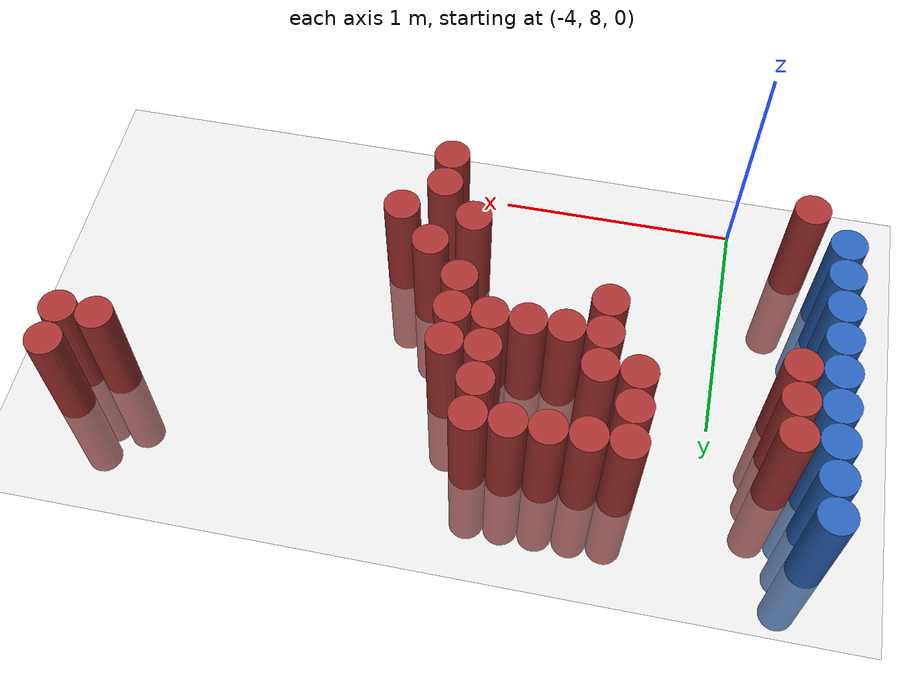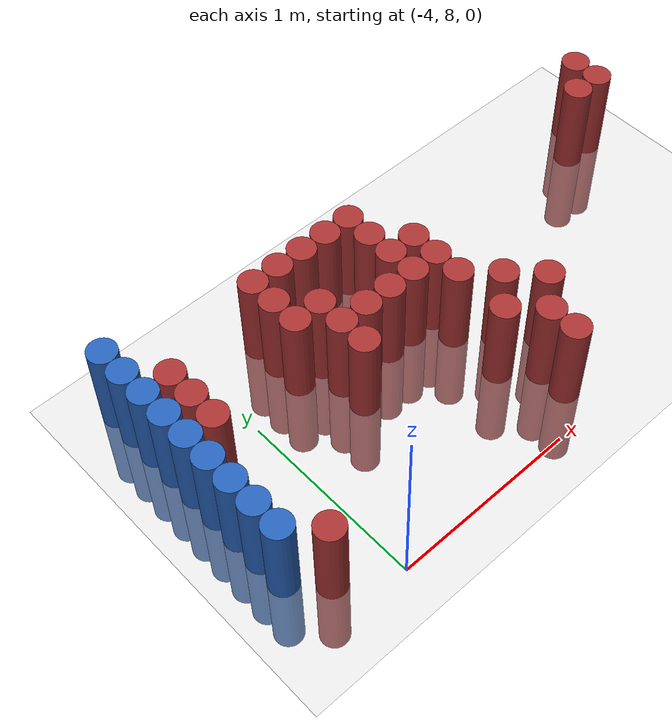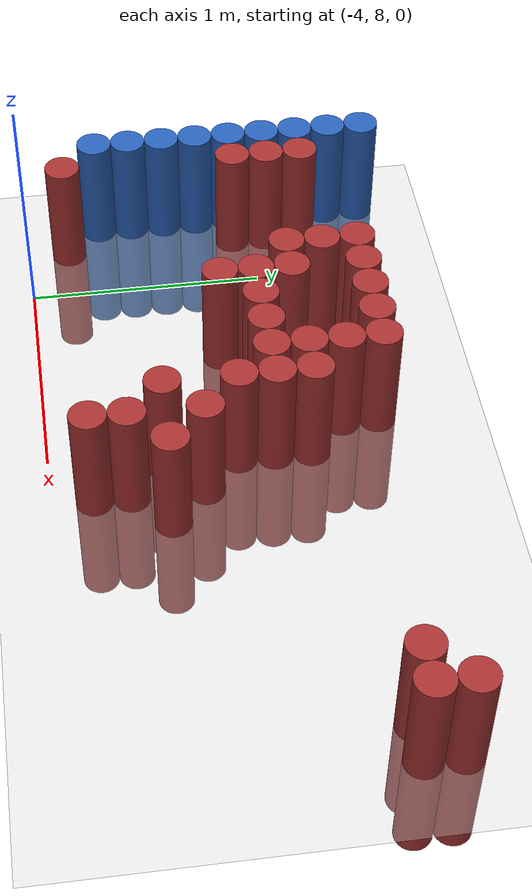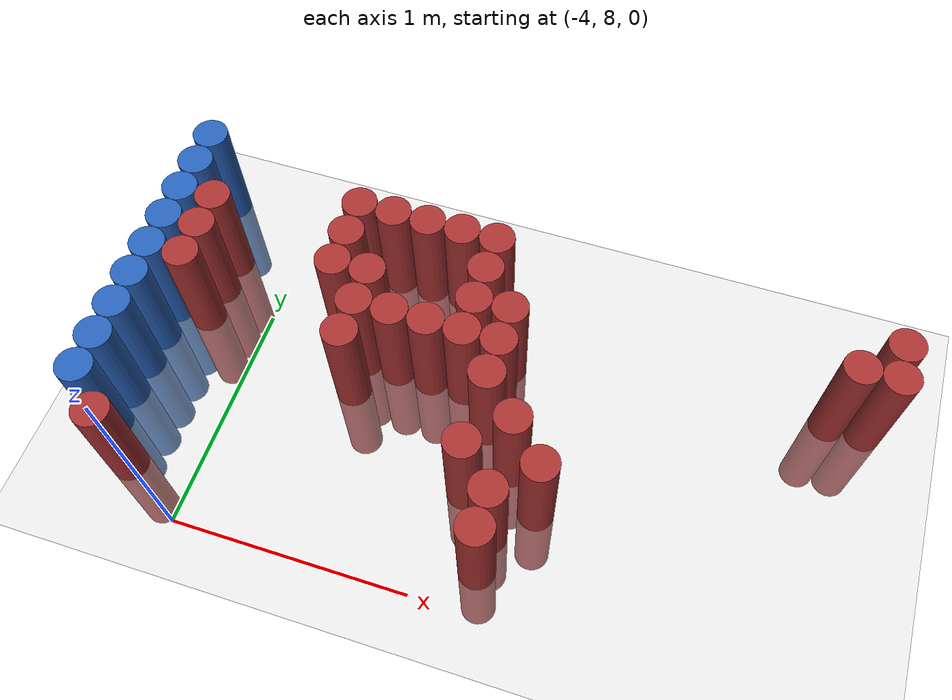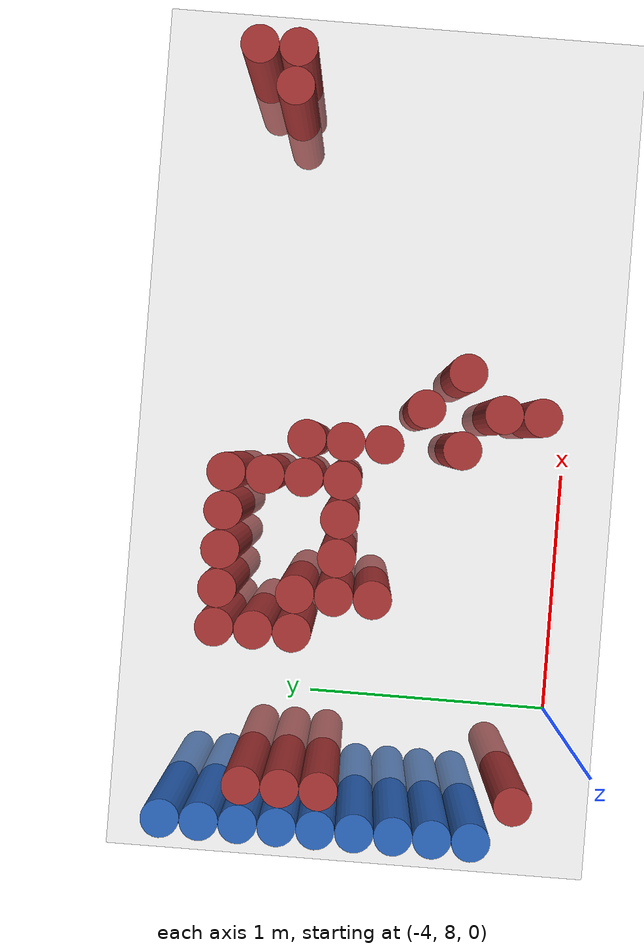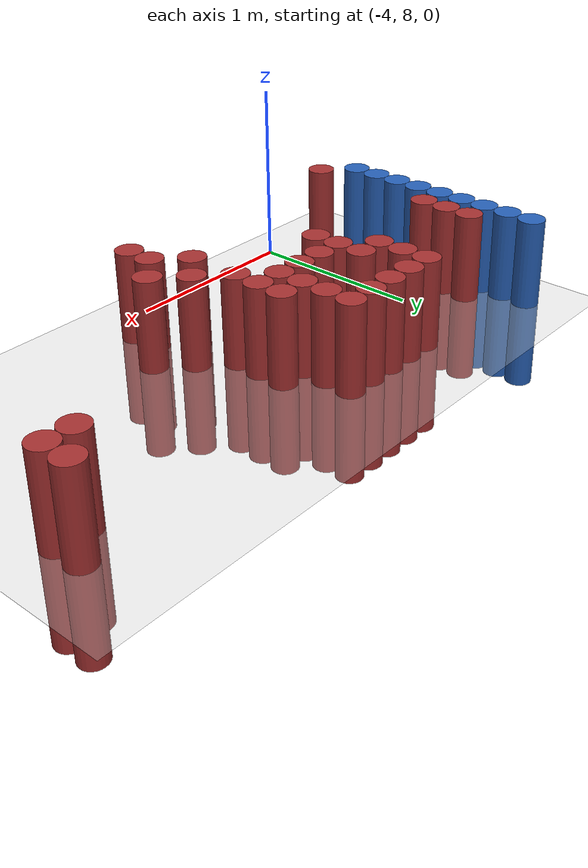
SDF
<sdf version="1.6">
 <world name="default">
  <model name="ground_plane">
   <static>1</static>
   <link name="link">
    <collision name="collision">
     <geometry><plane><normal>0 0 1</normal><size>100 100</size></plane></geometry>
     <surface><friction><ode><mu>100</mu><mu2>50</mu2></ode></friction></surface>
    </collision>
    <visual name="visual">
     <cast_shadows>0</cast_shadows>
     <geometry><plane><normal>0 0 1</normal><size>100 100</size></plane></geometry>
     <material>
      <script><uri>file://media/materials/scripts/gazebo.material</uri><name>Gazebo/Grey</name></script>
     </material>
    </visual>
   </link>
  </model>
  <model name="unit_cylinder_117">
   <static>1</static>
   <pose>-4.425000 8.325000 0.000000 0.000000 0.000000 0.000000</pose>
   <link name="link">
    <inertial>
     <mass>1</mass>
     <inertia><ixx>0.145833</ixx><ixy>0</ixy><ixz>0</ixz><iyy>0.145833</iyy><iyz>0</iyz><izz>0.125</izz></inertia>
    </inertial>
    <collision name="collision">
     <geometry><cylinder><radius>0.075000</radius><length>1</length></cylinder></geometry>
    </collision>
    <visual name="visual">
     <geometry><cylinder><radius>0.075000</radius><length>1</length></cylinder></geometry>
     <material>
      <ambient>0.152000 0.379000 0.720000 1</ambient>
      <diffuse>0.152000 0.379000 0.720000 1</diffuse>
     </material>
     <material>
      <script><name>Gazebo/Grey</name><uri>file://media/materials/scripts/gazebo.material</uri></script>
     </material>
    </visual>
    <sensor name="sensor_contact" type="contact"><contact><collision>collision</collision></contact></sensor>
   </link>
   <plugin filename="gz-sim-touchplugin-system" name="gz::sim::systems::TouchPlugin">
    <target>robot</target>
    <namespace>robot</namespace>
    <time>0.001</time>
    <enabled>true</enabled>
   </plugin>
  </model>
  <model name="unit_cylinder_118">
   <static>1</static>
   <pose>-4.425000 8.475000 0.000000 0.000000 0.000000 0.000000</pose>
   <link name="link">
    <inertial>
     <mass>1</mass>
     <inertia><ixx>0.145833</ixx><ixy>0</ixy><ixz>0</ixz><iyy>0.145833</iyy><iyz>0</iyz><izz>0.125</izz></inertia>
    </inertial>
    <collision name="collision">
     <geometry><cylinder><radius>0.075000</radius><length>1</length></cylinder></geometry>
    </collision>
    <visual name="visual">
     <geometry><cylinder><radius>0.075000</radius><length>1</length></cylinder></geometry>
     <material>
      <ambient>0.152000 0.379000 0.720000 1</ambient>
      <diffuse>0.152000 0.379000 0.720000 1</diffuse>
     </material>
     <material>
      <script><name>Gazebo/Grey</name><uri>file://media/materials/scripts/gazebo.material</uri></script>
     </material>
    </visual>
    <sensor name="sensor_contact" type="contact"><contact><collision>collision</collision></contact></sensor>
   </link>
   <plugin filename="gz-sim-touchplugin-system" name="gz::sim::systems::TouchPlugin">
    <target>robot</target>
    <namespace>robot</namespace>
    <time>0.001</time>
    <enabled>true</enabled>
   </plugin>
  </model>
  <model name="unit_cylinder_119">
   <static>1</static>
   <pose>-4.425000 8.625000 0.000000 0.000000 0.000000 0.000000</pose>
   <link name="link">
    <inertial>
     <mass>1</mass>
     <inertia><ixx>0.145833</ixx><ixy>0</ixy><ixz>0</ixz><iyy>0.145833</iyy><iyz>0</iyz><izz>0.125</izz></inertia>
    </inertial>
    <collision name="collision">
     <geometry><cylinder><radius>0.075000</radius><length>1</length></cylinder></geometry>
    </collision>
    <visual name="visual">
     <geometry><cylinder><radius>0.075000</radius><length>1</length></cylinder></geometry>
     <material>
      <ambient>0.152000 0.379000 0.720000 1</ambient>
      <diffuse>0.152000 0.379000 0.720000 1</diffuse>
     </material>
     <material>
      <script><name>Gazebo/Grey</name><uri>file://media/materials/scripts/gazebo.material</uri></script>
     </material>
    </visual>
    <sensor name="sensor_contact" type="contact"><contact><collision>collision</collision></contact></sensor>
   </link>
   <plugin filename="gz-sim-touchplugin-system" name="gz::sim::systems::TouchPlugin">
    <target>robot</target>
    <namespace>robot</namespace>
    <time>0.001</time>
    <enabled>true</enabled>
   </plugin>
  </model>
  <model name="unit_cylinder_120">
   <static>1</static>
   <pose>-4.425000 8.775000 0.000000 0.000000 0.000000 0.000000</pose>
   <link name="link">
    <inertial>
     <mass>1</mass>
     <inertia><ixx>0.145833</ixx><ixy>0</ixy><ixz>0</ixz><iyy>0.145833</iyy><iyz>0</iyz><izz>0.125</izz></inertia>
    </inertial>
    <collision name="collision">
     <geometry><cylinder><radius>0.075000</radius><length>1</length></cylinder></geometry>
    </collision>
    <visual name="visual">
     <geometry><cylinder><radius>0.075000</radius><length>1</length></cylinder></geometry>
     <material>
      <ambient>0.152000 0.379000 0.720000 1</ambient>
      <diffuse>0.152000 0.379000 0.720000 1</diffuse>
     </material>
     <material>
      <script><name>Gazebo/Grey</name><uri>file://media/materials/scripts/gazebo.material</uri></script>
     </material>
    </visual>
    <sensor name="sensor_contact" type="contact"><contact><collision>collision</collision></contact></sensor>
   </link>
   <plugin filename="gz-sim-touchplugin-system" name="gz::sim::systems::TouchPlugin">
    <target>robot</target>
    <namespace>robot</namespace>
    <time>0.001</time>
    <enabled>true</enabled>
   </plugin>
  </model>
  <model name="unit_cylinder_121">
   <static>1</static>
   <pose>-4.425000 8.925000 0.000000 0.000000 0.000000 0.000000</pose>
   <link name="link">
    <inertial>
     <mass>1</mass>
     <inertia><ixx>0.145833</ixx><ixy>0</ixy><ixz>0</ixz><iyy>0.145833</iyy><iyz>0</iyz><izz>0.125</izz></inertia>
    </inertial>
    <collision name="collision">
     <geometry><cylinder><radius>0.075000</radius><length>1</length></cylinder></geometry>
    </collision>
    <visual name="visual">
     <geometry><cylinder><radius>0.075000</radius><length>1</length></cylinder></geometry>
     <material>
      <ambient>0.152000 0.379000 0.720000 1</ambient>
      <diffuse>0.152000 0.379000 0.720000 1</diffuse>
     </material>
     <material>
      <script><name>Gazebo/Grey</name><uri>file://media/materials/scripts/gazebo.material</uri></script>
     </material>
    </visual>
    <sensor name="sensor_contact" type="contact"><contact><collision>collision</collision></contact></sensor>
   </link>
   <plugin filename="gz-sim-touchplugin-system" name="gz::sim::systems::TouchPlugin">
    <target>robot</target>
    <namespace>robot</namespace>
    <time>0.001</time>
    <enabled>true</enabled>
   </plugin>
  </model>
  <model name="unit_cylinder_122">
   <static>1</static>
   <pose>-4.425000 9.075000 0.000000 0.000000 0.000000 0.000000</pose>
   <link name="link">
    <inertial>
     <mass>1</mass>
     <inertia><ixx>0.145833</ixx><ixy>0</ixy><ixz>0</ixz><iyy>0.145833</iyy><iyz>0</iyz><izz>0.125</izz></inertia>
    </inertial>
    <collision name="collision">
     <geometry><cylinder><radius>0.075000</radius><length>1</length></cylinder></geometry>
    </collision>
    <visual name="visual">
     <geometry><cylinder><radius>0.075000</radius><length>1</length></cylinder></geometry>
     <material>
      <ambient>0.152000 0.379000 0.720000 1</ambient>
      <diffuse>0.152000 0.379000 0.720000 1</diffuse>
     </material>
     <material>
      <script><name>Gazebo/Grey</name><uri>file://media/materials/scripts/gazebo.material</uri></script>
     </material>
    </visual>
    <sensor name="sensor_contact" type="contact"><contact><collision>collision</collision></contact></sensor>
   </link>
   <plugin filename="gz-sim-touchplugin-system" name="gz::sim::systems::TouchPlugin">
    <target>robot</target>
    <namespace>robot</namespace>
    <time>0.001</time>
    <enabled>true</enabled>
   </plugin>
  </model>
  <model name="unit_cylinder_123">
   <static>1</static>
   <pose>-4.425000 9.225000 0.000000 0.000000 0.000000 0.000000</pose>
   <link name="link">
    <inertial>
     <mass>1</mass>
     <inertia><ixx>0.145833</ixx><ixy>0</ixy><ixz>0</ixz><iyy>0.145833</iyy><iyz>0</iyz><izz>0.125</izz></inertia>
    </inertial>
    <collision name="collision">
     <geometry><cylinder><radius>0.075000</radius><length>1</length></cylinder></geometry>
    </collision>
    <visual name="visual">
     <geometry><cylinder><radius>0.075000</radius><length>1</length></cylinder></geometry>
     <material>
      <ambient>0.152000 0.379000 0.720000 1</ambient>
      <diffuse>0.152000 0.379000 0.720000 1</diffuse>
     </material>
     <material>
      <script><name>Gazebo/Grey</name><uri>file://media/materials/scripts/gazebo.material</uri></script>
     </material>
    </visual>
    <sensor name="sensor_contact" type="contact"><contact><collision>collision</collision></contact></sensor>
   </link>
   <plugin filename="gz-sim-touchplugin-system" name="gz::sim::systems::TouchPlugin">
    <target>robot</target>
    <namespace>robot</namespace>
    <time>0.001</time>
    <enabled>true</enabled>
   </plugin>
  </model>
  <model name="unit_cylinder_124">
   <static>1</static>
   <pose>-4.425000 9.375000 0.000000 0.000000 0.000000 0.000000</pose>
   <link name="link">
    <inertial>
     <mass>1</mass>
     <inertia><ixx>0.145833</ixx><ixy>0</ixy><ixz>0</ixz><iyy>0.145833</iyy><iyz>0</iyz><izz>0.125</izz></inertia>
    </inertial>
    <collision name="collision">
     <geometry><cylinder><radius>0.075000</radius><length>1</length></cylinder></geometry>
    </collision>
    <visual name="visual">
     <geometry><cylinder><radius>0.075000</radius><length>1</length></cylinder></geometry>
     <material>
      <ambient>0.152000 0.379000 0.720000 1</ambient>
      <diffuse>0.152000 0.379000 0.720000 1</diffuse>
     </material>
     <material>
      <script><name>Gazebo/Grey</name><uri>file://media/materials/scripts/gazebo.material</uri></script>
     </material>
    </visual>
    <sensor name="sensor_contact" type="contact"><contact><collision>collision</collision></contact></sensor>
   </link>
   <plugin filename="gz-sim-touchplugin-system" name="gz::sim::systems::TouchPlugin">
    <target>robot</target>
    <namespace>robot</namespace>
    <time>0.001</time>
    <enabled>true</enabled>
   </plugin>
  </model>
  <model name="unit_cylinder_125">
   <static>1</static>
   <pose>-4.425000 9.525000 0.000000 0.000000 0.000000 0.000000</pose>
   <link name="link">
    <inertial>
     <mass>1</mass>
     <inertia><ixx>0.145833</ixx><ixy>0</ixy><ixz>0</ixz><iyy>0.145833</iyy><iyz>0</iyz><izz>0.125</izz></inertia>
    </inertial>
    <collision name="collision">
     <geometry><cylinder><radius>0.075000</radius><length>1</length></cylinder></geometry>
    </collision>
    <visual name="visual">
     <geometry><cylinder><radius>0.075000</radius><length>1</length></cylinder></geometry>
     <material>
      <ambient>0.152000 0.379000 0.720000 1</ambient>
      <diffuse>0.152000 0.379000 0.720000 1</diffuse>
     </material>
     <material>
      <script><name>Gazebo/Grey</name><uri>file://media/materials/scripts/gazebo.material</uri></script>
     </material>
    </visual>
    <sensor name="sensor_contact" type="contact"><contact><collision>collision</collision></contact></sensor>
   </link>
   <plugin filename="gz-sim-touchplugin-system" name="gz::sim::systems::TouchPlugin">
    <target>robot</target>
    <namespace>robot</namespace>
    <time>0.001</time>
    <enabled>true</enabled>
   </plugin>
  </model>
  <model name="unit_cylinder_136">
   <static>1</static>
   <pose>-4.275000 8.175000 0.000000 0.000000 0.000000 0.000000</pose>
   <link name="link">
    <inertial>
     <mass>1</mass>
     <inertia><ixx>0.145833</ixx><ixy>0</ixy><ixz>0</ixz><iyy>0.145833</iyy><iyz>0</iyz><izz>0.125</izz></inertia>
    </inertial>
    <collision name="collision">
     <geometry><cylinder><radius>0.075000</radius><length>1</length></cylinder></geometry>
    </collision>
    <visual name="visual">
     <geometry><cylinder><radius>0.075000</radius><length>1</length></cylinder></geometry>
     <material>
      <ambient>0.648000 0.192000 0.192000 1</ambient>
      <diffuse>0.648000 0.192000 0.192000 1</diffuse>
     </material>
     <material>
      <script><name>Gazebo/Grey</name><uri>file://media/materials/scripts/gazebo.material</uri></script>
     </material>
    </visual>
    <sensor name="sensor_contact" type="contact"><contact><collision>collision</collision></contact></sensor>
   </link>
   <plugin filename="gz-sim-touchplugin-system" name="gz::sim::systems::TouchPlugin">
    <target>robot</target>
    <namespace>robot</namespace>
    <time>0.001</time>
    <enabled>true</enabled>
   </plugin>
  </model>
  <model name="unit_cylinder_137">
   <static>1</static>
   <pose>-4.275000 8.925000 0.000000 0.000000 0.000000 0.000000</pose>
   <link name="link">
    <inertial>
     <mass>1</mass>
     <inertia><ixx>0.145833</ixx><ixy>0</ixy><ixz>0</ixz><iyy>0.145833</iyy><iyz>0</iyz><izz>0.125</izz></inertia>
    </inertial>
    <collision name="collision">
     <geometry><cylinder><radius>0.075000</radius><length>1</length></cylinder></geometry>
    </collision>
    <visual name="visual">
     <geometry><cylinder><radius>0.075000</radius><length>1</length></cylinder></geometry>
     <material>
      <ambient>0.648000 0.192000 0.192000 1</ambient>
      <diffuse>0.648000 0.192000 0.192000 1</diffuse>
     </material>
     <material>
      <script><name>Gazebo/Grey</name><uri>file://media/materials/scripts/gazebo.material</uri></script>
     </material>
    </visual>
    <sensor name="sensor_contact" type="contact"><contact><collision>collision</collision></contact></sensor>
   </link>
   <plugin filename="gz-sim-touchplugin-system" name="gz::sim::systems::TouchPlugin">
    <target>robot</target>
    <namespace>robot</namespace>
    <time>0.001</time>
    <enabled>true</enabled>
   </plugin>
  </model>
  <model name="unit_cylinder_138">
   <static>1</static>
   <pose>-4.275000 9.075000 0.000000 0.000000 0.000000 0.000000</pose>
   <link name="link">
    <inertial>
     <mass>1</mass>
     <inertia><ixx>0.145833</ixx><ixy>0</ixy><ixz>0</ixz><iyy>0.145833</iyy><iyz>0</iyz><izz>0.125</izz></inertia>
    </inertial>
    <collision name="collision">
     <geometry><cylinder><radius>0.075000</radius><length>1</length></cylinder></geometry>
    </collision>
    <visual name="visual">
     <geometry><cylinder><radius>0.075000</radius><length>1</length></cylinder></geometry>
     <material>
      <ambient>0.648000 0.192000 0.192000 1</ambient>
      <diffuse>0.648000 0.192000 0.192000 1</diffuse>
     </material>
     <material>
      <script><name>Gazebo/Grey</name><uri>file://media/materials/scripts/gazebo.material</uri></script>
     </material>
    </visual>
    <sensor name="sensor_contact" type="contact"><contact><collision>collision</collision></contact></sensor>
   </link>
   <plugin filename="gz-sim-touchplugin-system" name="gz::sim::systems::TouchPlugin">
    <target>robot</target>
    <namespace>robot</namespace>
    <time>0.001</time>
    <enabled>true</enabled>
   </plugin>
  </model>
  <model name="unit_cylinder_139">
   <static>1</static>
   <pose>-4.275000 9.225000 0.000000 0.000000 0.000000 0.000000</pose>
   <link name="link">
    <inertial>
     <mass>1</mass>
     <inertia><ixx>0.145833</ixx><ixy>0</ixy><ixz>0</ixz><iyy>0.145833</iyy><iyz>0</iyz><izz>0.125</izz></inertia>
    </inertial>
    <collision name="collision">
     <geometry><cylinder><radius>0.075000</radius><length>1</length></cylinder></geometry>
    </collision>
    <visual name="visual">
     <geometry><cylinder><radius>0.075000</radius><length>1</length></cylinder></geometry>
     <material>
      <ambient>0.648000 0.192000 0.192000 1</ambient>
      <diffuse>0.648000 0.192000 0.192000 1</diffuse>
     </material>
     <material>
      <script><name>Gazebo/Grey</name><uri>file://media/materials/scripts/gazebo.material</uri></script>
     </material>
    </visual>
    <sensor name="sensor_contact" type="contact"><contact><collision>collision</collision></contact></sensor>
   </link>
   <plugin filename="gz-sim-touchplugin-system" name="gz::sim::systems::TouchPlugin">
    <target>robot</target>
    <namespace>robot</namespace>
    <time>0.001</time>
    <enabled>true</enabled>
   </plugin>
  </model>
  <model name="unit_cylinder_162">
   <static>1</static>
   <pose>-3.675000 9.075000 0.000000 0.000000 0.000000 0.000000</pose>
   <link name="link">
    <inertial>
     <mass>1</mass>
     <inertia><ixx>0.145833</ixx><ixy>0</ixy><ixz>0</ixz><iyy>0.145833</iyy><iyz>0</iyz><izz>0.125</izz></inertia>
    </inertial>
    <collision name="collision">
     <geometry><cylinder><radius>0.075000</radius><length>1</length></cylinder></geometry>
    </collision>
    <visual name="visual">
     <geometry><cylinder><radius>0.075000</radius><length>1</length></cylinder></geometry>
     <material>
      <ambient>0.648000 0.192000 0.192000 1</ambient>
      <diffuse>0.648000 0.192000 0.192000 1</diffuse>
     </material>
     <material>
      <script><name>Gazebo/Grey</name><uri>file://media/materials/scripts/gazebo.material</uri></script>
     </material>
    </visual>
    <sensor name="sensor_contact" type="contact"><contact><collision>collision</collision></contact></sensor>
   </link>
   <plugin filename="gz-sim-touchplugin-system" name="gz::sim::systems::TouchPlugin">
    <target>robot</target>
    <namespace>robot</namespace>
    <time>0.001</time>
    <enabled>true</enabled>
   </plugin>
  </model>
  <model name="unit_cylinder_163">
   <static>1</static>
   <pose>-3.675000 9.225000 0.000000 0.000000 0.000000 0.000000</pose>
   <link name="link">
    <inertial>
     <mass>1</mass>
     <inertia><ixx>0.145833</ixx><ixy>0</ixy><ixz>0</ixz><iyy>0.145833</iyy><iyz>0</iyz><izz>0.125</izz></inertia>
    </inertial>
    <collision name="collision">
     <geometry><cylinder><radius>0.075000</radius><length>1</length></cylinder></geometry>
    </collision>
    <visual name="visual">
     <geometry><cylinder><radius>0.075000</radius><length>1</length></cylinder></geometry>
     <material>
      <ambient>0.648000 0.192000 0.192000 1</ambient>
      <diffuse>0.648000 0.192000 0.192000 1</diffuse>
     </material>
     <material>
      <script><name>Gazebo/Grey</name><uri>file://media/materials/scripts/gazebo.material</uri></script>
     </material>
    </visual>
    <sensor name="sensor_contact" type="contact"><contact><collision>collision</collision></contact></sensor>
   </link>
   <plugin filename="gz-sim-touchplugin-system" name="gz::sim::systems::TouchPlugin">
    <target>robot</target>
    <namespace>robot</namespace>
    <time>0.001</time>
    <enabled>true</enabled>
   </plugin>
  </model>
  <model name="unit_cylinder_164">
   <static>1</static>
   <pose>-3.675000 9.375000 0.000000 0.000000 0.000000 0.000000</pose>
   <link name="link">
    <inertial>
     <mass>1</mass>
     <inertia><ixx>0.145833</ixx><ixy>0</ixy><ixz>0</ixz><iyy>0.145833</iyy><iyz>0</iyz><izz>0.125</izz></inertia>
    </inertial>
    <collision name="collision">
     <geometry><cylinder><radius>0.075000</radius><length>1</length></cylinder></geometry>
    </collision>
    <visual name="visual">
     <geometry><cylinder><radius>0.075000</radius><length>1</length></cylinder></geometry>
     <material>
      <ambient>0.648000 0.192000 0.192000 1</ambient>
      <diffuse>0.648000 0.192000 0.192000 1</diffuse>
     </material>
     <material>
      <script><name>Gazebo/Grey</name><uri>file://media/materials/scripts/gazebo.material</uri></script>
     </material>
    </visual>
    <sensor name="sensor_contact" type="contact"><contact><collision>collision</collision></contact></sensor>
   </link>
   <plugin filename="gz-sim-touchplugin-system" name="gz::sim::systems::TouchPlugin">
    <target>robot</target>
    <namespace>robot</namespace>
    <time>0.001</time>
    <enabled>true</enabled>
   </plugin>
  </model>
  <model name="unit_cylinder_170">
   <static>1</static>
   <pose>-3.525000 8.775000 0.000000 0.000000 0.000000 0.000000</pose>
   <link name="link">
    <inertial>
     <mass>1</mass>
     <inertia><ixx>0.145833</ixx><ixy>0</ixy><ixz>0</ixz><iyy>0.145833</iyy><iyz>0</iyz><izz>0.125</izz></inertia>
    </inertial>
    <collision name="collision">
     <geometry><cylinder><radius>0.075000</radius><length>1</length></cylinder></geometry>
    </collision>
    <visual name="visual">
     <geometry><cylinder><radius>0.075000</radius><length>1</length></cylinder></geometry>
     <material>
      <ambient>0.648000 0.192000 0.192000 1</ambient>
      <diffuse>0.648000 0.192000 0.192000 1</diffuse>
     </material>
     <material>
      <script><name>Gazebo/Grey</name><uri>file://media/materials/scripts/gazebo.material</uri></script>
     </material>
    </visual>
    <sensor name="sensor_contact" type="contact"><contact><collision>collision</collision></contact></sensor>
   </link>
   <plugin filename="gz-sim-touchplugin-system" name="gz::sim::systems::TouchPlugin">
    <target>robot</target>
    <namespace>robot</namespace>
    <time>0.001</time>
    <enabled>true</enabled>
   </plugin>
  </model>
  <model name="unit_cylinder_171">
   <static>1</static>
   <pose>-3.525000 8.925000 0.000000 0.000000 0.000000 0.000000</pose>
   <link name="link">
    <inertial>
     <mass>1</mass>
     <inertia><ixx>0.145833</ixx><ixy>0</ixy><ixz>0</ixz><iyy>0.145833</iyy><iyz>0</iyz><izz>0.125</izz></inertia>
    </inertial>
    <collision name="collision">
     <geometry><cylinder><radius>0.075000</radius><length>1</length></cylinder></geometry>
    </collision>
    <visual name="visual">
     <geometry><cylinder><radius>0.075000</radius><length>1</length></cylinder></geometry>
     <material>
      <ambient>0.648000 0.192000 0.192000 1</ambient>
      <diffuse>0.648000 0.192000 0.192000 1</diffuse>
     </material>
     <material>
      <script><name>Gazebo/Grey</name><uri>file://media/materials/scripts/gazebo.material</uri></script>
     </material>
    </visual>
    <sensor name="sensor_contact" type="contact"><contact><collision>collision</collision></contact></sensor>
   </link>
   <plugin filename="gz-sim-touchplugin-system" name="gz::sim::systems::TouchPlugin">
    <target>robot</target>
    <namespace>robot</namespace>
    <time>0.001</time>
    <enabled>true</enabled>
   </plugin>
  </model>
  <model name="unit_cylinder_172">
   <static>1</static>
   <pose>-3.525000 9.075000 0.000000 0.000000 0.000000 0.000000</pose>
   <link name="link">
    <inertial>
     <mass>1</mass>
     <inertia><ixx>0.145833</ixx><ixy>0</ixy><ixz>0</ixz><iyy>0.145833</iyy><iyz>0</iyz><izz>0.125</izz></inertia>
    </inertial>
    <collision name="collision">
     <geometry><cylinder><radius>0.075000</radius><length>1</length></cylinder></geometry>
    </collision>
    <visual name="visual">
     <geometry><cylinder><radius>0.075000</radius><length>1</length></cylinder></geometry>
     <material>
      <ambient>0.648000 0.192000 0.192000 1</ambient>
      <diffuse>0.648000 0.192000 0.192000 1</diffuse>
     </material>
     <material>
      <script><name>Gazebo/Grey</name><uri>file://media/materials/scripts/gazebo.material</uri></script>
     </material>
    </visual>
    <sensor name="sensor_contact" type="contact"><contact><collision>collision</collision></contact></sensor>
   </link>
   <plugin filename="gz-sim-touchplugin-system" name="gz::sim::systems::TouchPlugin">
    <target>robot</target>
    <namespace>robot</namespace>
    <time>0.001</time>
    <enabled>true</enabled>
   </plugin>
  </model>
  <model name="unit_cylinder_173">
   <static>1</static>
   <pose>-3.525000 9.375000 0.000000 0.000000 0.000000 0.000000</pose>
   <link name="link">
    <inertial>
     <mass>1</mass>
     <inertia><ixx>0.145833</ixx><ixy>0</ixy><ixz>0</ixz><iyy>0.145833</iyy><iyz>0</iyz><izz>0.125</izz></inertia>
    </inertial>
    <collision name="collision">
     <geometry><cylinder><radius>0.075000</radius><length>1</length></cylinder></geometry>
    </collision>
    <visual name="visual">
     <geometry><cylinder><radius>0.075000</radius><length>1</length></cylinder></geometry>
     <material>
      <ambient>0.648000 0.192000 0.192000 1</ambient>
      <diffuse>0.648000 0.192000 0.192000 1</diffuse>
     </material>
     <material>
      <script><name>Gazebo/Grey</name><uri>file://media/materials/scripts/gazebo.material</uri></script>
     </material>
    </visual>
    <sensor name="sensor_contact" type="contact"><contact><collision>collision</collision></contact></sensor>
   </link>
   <plugin filename="gz-sim-touchplugin-system" name="gz::sim::systems::TouchPlugin">
    <target>robot</target>
    <namespace>robot</namespace>
    <time>0.001</time>
    <enabled>true</enabled>
   </plugin>
  </model>
  <model name="unit_cylinder_180">
   <static>1</static>
   <pose>-3.375000 8.925000 0.000000 0.000000 0.000000 0.000000</pose>
   <link name="link">
    <inertial>
     <mass>1</mass>
     <inertia><ixx>0.145833</ixx><ixy>0</ixy><ixz>0</ixz><iyy>0.145833</iyy><iyz>0</iyz><izz>0.125</izz></inertia>
    </inertial>
    <collision name="collision">
     <geometry><cylinder><radius>0.075000</radius><length>1</length></cylinder></geometry>
    </collision>
    <visual name="visual">
     <geometry><cylinder><radius>0.075000</radius><length>1</length></cylinder></geometry>
     <material>
      <ambient>0.648000 0.192000 0.192000 1</ambient>
      <diffuse>0.648000 0.192000 0.192000 1</diffuse>
     </material>
     <material>
      <script><name>Gazebo/Grey</name><uri>file://media/materials/scripts/gazebo.material</uri></script>
     </material>
    </visual>
    <sensor name="sensor_contact" type="contact"><contact><collision>collision</collision></contact></sensor>
   </link>
   <plugin filename="gz-sim-touchplugin-system" name="gz::sim::systems::TouchPlugin">
    <target>robot</target>
    <namespace>robot</namespace>
    <time>0.001</time>
    <enabled>true</enabled>
   </plugin>
  </model>
  <model name="unit_cylinder_181">
   <static>1</static>
   <pose>-3.375000 9.375000 0.000000 0.000000 0.000000 0.000000</pose>
   <link name="link">
    <inertial>
     <mass>1</mass>
     <inertia><ixx>0.145833</ixx><ixy>0</ixy><ixz>0</ixz><iyy>0.145833</iyy><iyz>0</iyz><izz>0.125</izz></inertia>
    </inertial>
    <collision name="collision">
     <geometry><cylinder><radius>0.075000</radius><length>1</length></cylinder></geometry>
    </collision>
    <visual name="visual">
     <geometry><cylinder><radius>0.075000</radius><length>1</length></cylinder></geometry>
     <material>
      <ambient>0.648000 0.192000 0.192000 1</ambient>
      <diffuse>0.648000 0.192000 0.192000 1</diffuse>
     </material>
     <material>
      <script><name>Gazebo/Grey</name><uri>file://media/materials/scripts/gazebo.material</uri></script>
     </material>
    </visual>
    <sensor name="sensor_contact" type="contact"><contact><collision>collision</collision></contact></sensor>
   </link>
   <plugin filename="gz-sim-touchplugin-system" name="gz::sim::systems::TouchPlugin">
    <target>robot</target>
    <namespace>robot</namespace>
    <time>0.001</time>
    <enabled>true</enabled>
   </plugin>
  </model>
  <model name="unit_cylinder_188">
   <static>1</static>
   <pose>-3.225000 8.925000 0.000000 0.000000 0.000000 0.000000</pose>
   <link name="link">
    <inertial>
     <mass>1</mass>
     <inertia><ixx>0.145833</ixx><ixy>0</ixy><ixz>0</ixz><iyy>0.145833</iyy><iyz>0</iyz><izz>0.125</izz></inertia>
    </inertial>
    <collision name="collision">
     <geometry><cylinder><radius>0.075000</radius><length>1</length></cylinder></geometry>
    </collision>
    <visual name="visual">
     <geometry><cylinder><radius>0.075000</radius><length>1</length></cylinder></geometry>
     <material>
      <ambient>0.648000 0.192000 0.192000 1</ambient>
      <diffuse>0.648000 0.192000 0.192000 1</diffuse>
     </material>
     <material>
      <script><name>Gazebo/Grey</name><uri>file://media/materials/scripts/gazebo.material</uri></script>
     </material>
    </visual>
    <sensor name="sensor_contact" type="contact"><contact><collision>collision</collision></contact></sensor>
   </link>
   <plugin filename="gz-sim-touchplugin-system" name="gz::sim::systems::TouchPlugin">
    <target>robot</target>
    <namespace>robot</namespace>
    <time>0.001</time>
    <enabled>true</enabled>
   </plugin>
  </model>
  <model name="unit_cylinder_189">
   <static>1</static>
   <pose>-3.225000 9.375000 0.000000 0.000000 0.000000 0.000000</pose>
   <link name="link">
    <inertial>
     <mass>1</mass>
     <inertia><ixx>0.145833</ixx><ixy>0</ixy><ixz>0</ixz><iyy>0.145833</iyy><iyz>0</iyz><izz>0.125</izz></inertia>
    </inertial>
    <collision name="collision">
     <geometry><cylinder><radius>0.075000</radius><length>1</length></cylinder></geometry>
    </collision>
    <visual name="visual">
     <geometry><cylinder><radius>0.075000</radius><length>1</length></cylinder></geometry>
     <material>
      <ambient>0.648000 0.192000 0.192000 1</ambient>
      <diffuse>0.648000 0.192000 0.192000 1</diffuse>
     </material>
     <material>
      <script><name>Gazebo/Grey</name><uri>file://media/materials/scripts/gazebo.material</uri></script>
     </material>
    </visual>
    <sensor name="sensor_contact" type="contact"><contact><collision>collision</collision></contact></sensor>
   </link>
   <plugin filename="gz-sim-touchplugin-system" name="gz::sim::systems::TouchPlugin">
    <target>robot</target>
    <namespace>robot</namespace>
    <time>0.001</time>
    <enabled>true</enabled>
   </plugin>
  </model>
  <model name="unit_cylinder_192">
   <static>1</static>
   <pose>-3.075000 8.925000 0.000000 0.000000 0.000000 0.000000</pose>
   <link name="link">
    <inertial>
     <mass>1</mass>
     <inertia><ixx>0.145833</ixx><ixy>0</ixy><ixz>0</ixz><iyy>0.145833</iyy><iyz>0</iyz><izz>0.125</izz></inertia>
    </inertial>
    <collision name="collision">
     <geometry><cylinder><radius>0.075000</radius><length>1</length></cylinder></geometry>
    </collision>
    <visual name="visual">
     <geometry><cylinder><radius>0.075000</radius><length>1</length></cylinder></geometry>
     <material>
      <ambient>0.648000 0.192000 0.192000 1</ambient>
      <diffuse>0.648000 0.192000 0.192000 1</diffuse>
     </material>
     <material>
      <script><name>Gazebo/Grey</name><uri>file://media/materials/scripts/gazebo.material</uri></script>
     </material>
    </visual>
    <sensor name="sensor_contact" type="contact"><contact><collision>collision</collision></contact></sensor>
   </link>
   <plugin filename="gz-sim-touchplugin-system" name="gz::sim::systems::TouchPlugin">
    <target>robot</target>
    <namespace>robot</namespace>
    <time>0.001</time>
    <enabled>true</enabled>
   </plugin>
  </model>
  <model name="unit_cylinder_193">
   <static>1</static>
   <pose>-3.075000 9.075000 0.000000 0.000000 0.000000 0.000000</pose>
   <link name="link">
    <inertial>
     <mass>1</mass>
     <inertia><ixx>0.145833</ixx><ixy>0</ixy><ixz>0</ixz><iyy>0.145833</iyy><iyz>0</iyz><izz>0.125</izz></inertia>
    </inertial>
    <collision name="collision">
     <geometry><cylinder><radius>0.075000</radius><length>1</length></cylinder></geometry>
    </collision>
    <visual name="visual">
     <geometry><cylinder><radius>0.075000</radius><length>1</length></cylinder></geometry>
     <material>
      <ambient>0.648000 0.192000 0.192000 1</ambient>
      <diffuse>0.648000 0.192000 0.192000 1</diffuse>
     </material>
     <material>
      <script><name>Gazebo/Grey</name><uri>file://media/materials/scripts/gazebo.material</uri></script>
     </material>
    </visual>
    <sensor name="sensor_contact" type="contact"><contact><collision>collision</collision></contact></sensor>
   </link>
   <plugin filename="gz-sim-touchplugin-system" name="gz::sim::systems::TouchPlugin">
    <target>robot</target>
    <namespace>robot</namespace>
    <time>0.001</time>
    <enabled>true</enabled>
   </plugin>
  </model>
  <model name="unit_cylinder_194">
   <static>1</static>
   <pose>-3.075000 9.225000 0.000000 0.000000 0.000000 0.000000</pose>
   <link name="link">
    <inertial>
     <mass>1</mass>
     <inertia><ixx>0.145833</ixx><ixy>0</ixy><ixz>0</ixz><iyy>0.145833</iyy><iyz>0</iyz><izz>0.125</izz></inertia>
    </inertial>
    <collision name="collision">
     <geometry><cylinder><radius>0.075000</radius><length>1</length></cylinder></geometry>
    </collision>
    <visual name="visual">
     <geometry><cylinder><radius>0.075000</radius><length>1</length></cylinder></geometry>
     <material>
      <ambient>0.648000 0.192000 0.192000 1</ambient>
      <diffuse>0.648000 0.192000 0.192000 1</diffuse>
     </material>
     <material>
      <script><name>Gazebo/Grey</name><uri>file://media/materials/scripts/gazebo.material</uri></script>
     </material>
    </visual>
    <sensor name="sensor_contact" type="contact"><contact><collision>collision</collision></contact></sensor>
   </link>
   <plugin filename="gz-sim-touchplugin-system" name="gz::sim::systems::TouchPlugin">
    <target>robot</target>
    <namespace>robot</namespace>
    <time>0.001</time>
    <enabled>true</enabled>
   </plugin>
  </model>
  <model name="unit_cylinder_195">
   <static>1</static>
   <pose>-3.075000 9.375000 0.000000 0.000000 0.000000 0.000000</pose>
   <link name="link">
    <inertial>
     <mass>1</mass>
     <inertia><ixx>0.145833</ixx><ixy>0</ixy><ixz>0</ixz><iyy>0.145833</iyy><iyz>0</iyz><izz>0.125</izz></inertia>
    </inertial>
    <collision name="collision">
     <geometry><cylinder><radius>0.075000</radius><length>1</length></cylinder></geometry>
    </collision>
    <visual name="visual">
     <geometry><cylinder><radius>0.075000</radius><length>1</length></cylinder></geometry>
     <material>
      <ambient>0.648000 0.192000 0.192000 1</ambient>
      <diffuse>0.648000 0.192000 0.192000 1</diffuse>
     </material>
     <material>
      <script><name>Gazebo/Grey</name><uri>file://media/materials/scripts/gazebo.material</uri></script>
     </material>
    </visual>
    <sensor name="sensor_contact" type="contact"><contact><collision>collision</collision></contact></sensor>
   </link>
   <plugin filename="gz-sim-touchplugin-system" name="gz::sim::systems::TouchPlugin">
    <target>robot</target>
    <namespace>robot</namespace>
    <time>0.001</time>
    <enabled>true</enabled>
   </plugin>
  </model>
  <model name="unit_cylinder_197">
   <static>1</static>
   <pose>-2.925000 8.475000 0.000000 0.000000 0.000000 0.000000</pose>
   <link name="link">
    <inertial>
     <mass>1</mass>
     <inertia><ixx>0.145833</ixx><ixy>0</ixy><ixz>0</ixz><iyy>0.145833</iyy><iyz>0</iyz><izz>0.125</izz></inertia>
    </inertial>
    <collision name="collision">
     <geometry><cylinder><radius>0.075000</radius><length>1</length></cylinder></geometry>
    </collision>
    <visual name="visual">
     <geometry><cylinder><radius>0.075000</radius><length>1</length></cylinder></geometry>
     <material>
      <ambient>0.648000 0.192000 0.192000 1</ambient>
      <diffuse>0.648000 0.192000 0.192000 1</diffuse>
     </material>
     <material>
      <script><name>Gazebo/Grey</name><uri>file://media/materials/scripts/gazebo.material</uri></script>
     </material>
    </visual>
    <sensor name="sensor_contact" type="contact"><contact><collision>collision</collision></contact></sensor>
   </link>
   <plugin filename="gz-sim-touchplugin-system" name="gz::sim::systems::TouchPlugin">
    <target>robot</target>
    <namespace>robot</namespace>
    <time>0.001</time>
    <enabled>true</enabled>
   </plugin>
  </model>
  <model name="unit_cylinder_198">
   <static>1</static>
   <pose>-2.925000 8.775000 0.000000 0.000000 0.000000 0.000000</pose>
   <link name="link">
    <inertial>
     <mass>1</mass>
     <inertia><ixx>0.145833</ixx><ixy>0</ixy><ixz>0</ixz><iyy>0.145833</iyy><iyz>0</iyz><izz>0.125</izz></inertia>
    </inertial>
    <collision name="collision">
     <geometry><cylinder><radius>0.075000</radius><length>1</length></cylinder></geometry>
    </collision>
    <visual name="visual">
     <geometry><cylinder><radius>0.075000</radius><length>1</length></cylinder></geometry>
     <material>
      <ambient>0.648000 0.192000 0.192000 1</ambient>
      <diffuse>0.648000 0.192000 0.192000 1</diffuse>
     </material>
     <material>
      <script><name>Gazebo/Grey</name><uri>file://media/materials/scripts/gazebo.material</uri></script>
     </material>
    </visual>
    <sensor name="sensor_contact" type="contact"><contact><collision>collision</collision></contact></sensor>
   </link>
   <plugin filename="gz-sim-touchplugin-system" name="gz::sim::systems::TouchPlugin">
    <target>robot</target>
    <namespace>robot</namespace>
    <time>0.001</time>
    <enabled>true</enabled>
   </plugin>
  </model>
  <model name="unit_cylinder_199">
   <static>1</static>
   <pose>-2.925000 8.925000 0.000000 0.000000 0.000000 0.000000</pose>
   <link name="link">
    <inertial>
     <mass>1</mass>
     <inertia><ixx>0.145833</ixx><ixy>0</ixy><ixz>0</ixz><iyy>0.145833</iyy><iyz>0</iyz><izz>0.125</izz></inertia>
    </inertial>
    <collision name="collision">
     <geometry><cylinder><radius>0.075000</radius><length>1</length></cylinder></geometry>
    </collision>
    <visual name="visual">
     <geometry><cylinder><radius>0.075000</radius><length>1</length></cylinder></geometry>
     <material>
      <ambient>0.648000 0.192000 0.192000 1</ambient>
      <diffuse>0.648000 0.192000 0.192000 1</diffuse>
     </material>
     <material>
      <script><name>Gazebo/Grey</name><uri>file://media/materials/scripts/gazebo.material</uri></script>
     </material>
    </visual>
    <sensor name="sensor_contact" type="contact"><contact><collision>collision</collision></contact></sensor>
   </link>
   <plugin filename="gz-sim-touchplugin-system" name="gz::sim::systems::TouchPlugin">
    <target>robot</target>
    <namespace>robot</namespace>
    <time>0.001</time>
    <enabled>true</enabled>
   </plugin>
  </model>
  <model name="unit_cylinder_200">
   <static>1</static>
   <pose>-2.925000 9.075000 0.000000 0.000000 0.000000 0.000000</pose>
   <link name="link">
    <inertial>
     <mass>1</mass>
     <inertia><ixx>0.145833</ixx><ixy>0</ixy><ixz>0</ixz><iyy>0.145833</iyy><iyz>0</iyz><izz>0.125</izz></inertia>
    </inertial>
    <collision name="collision">
     <geometry><cylinder><radius>0.075000</radius><length>1</length></cylinder></geometry>
    </collision>
    <visual name="visual">
     <geometry><cylinder><radius>0.075000</radius><length>1</length></cylinder></geometry>
     <material>
      <ambient>0.648000 0.192000 0.192000 1</ambient>
      <diffuse>0.648000 0.192000 0.192000 1</diffuse>
     </material>
     <material>
      <script><name>Gazebo/Grey</name><uri>file://media/materials/scripts/gazebo.material</uri></script>
     </material>
    </visual>
    <sensor name="sensor_contact" type="contact"><contact><collision>collision</collision></contact></sensor>
   </link>
   <plugin filename="gz-sim-touchplugin-system" name="gz::sim::systems::TouchPlugin">
    <target>robot</target>
    <namespace>robot</namespace>
    <time>0.001</time>
    <enabled>true</enabled>
   </plugin>
  </model>
  <model name="unit_cylinder_201">
   <static>1</static>
   <pose>-2.775000 8.175000 0.000000 0.000000 0.000000 0.000000</pose>
   <link name="link">
    <inertial>
     <mass>1</mass>
     <inertia><ixx>0.145833</ixx><ixy>0</ixy><ixz>0</ixz><iyy>0.145833</iyy><iyz>0</iyz><izz>0.125</izz></inertia>
    </inertial>
    <collision name="collision">
     <geometry><cylinder><radius>0.075000</radius><length>1</length></cylinder></geometry>
    </collision>
    <visual name="visual">
     <geometry><cylinder><radius>0.075000</radius><length>1</length></cylinder></geometry>
     <material>
      <ambient>0.648000 0.192000 0.192000 1</ambient>
      <diffuse>0.648000 0.192000 0.192000 1</diffuse>
     </material>
     <material>
      <script><name>Gazebo/Grey</name><uri>file://media/materials/scripts/gazebo.material</uri></script>
     </material>
    </visual>
    <sensor name="sensor_contact" type="contact"><contact><collision>collision</collision></contact></sensor>
   </link>
   <plugin filename="gz-sim-touchplugin-system" name="gz::sim::systems::TouchPlugin">
    <target>robot</target>
    <namespace>robot</namespace>
    <time>0.001</time>
    <enabled>true</enabled>
   </plugin>
  </model>
  <model name="unit_cylinder_202">
   <static>1</static>
   <pose>-2.775000 8.325000 0.000000 0.000000 0.000000 0.000000</pose>
   <link name="link">
    <inertial>
     <mass>1</mass>
     <inertia><ixx>0.145833</ixx><ixy>0</ixy><ixz>0</ixz><iyy>0.145833</iyy><iyz>0</iyz><izz>0.125</izz></inertia>
    </inertial>
    <collision name="collision">
     <geometry><cylinder><radius>0.075000</radius><length>1</length></cylinder></geometry>
    </collision>
    <visual name="visual">
     <geometry><cylinder><radius>0.075000</radius><length>1</length></cylinder></geometry>
     <material>
      <ambient>0.648000 0.192000 0.192000 1</ambient>
      <diffuse>0.648000 0.192000 0.192000 1</diffuse>
     </material>
     <material>
      <script><name>Gazebo/Grey</name><uri>file://media/materials/scripts/gazebo.material</uri></script>
     </material>
    </visual>
    <sensor name="sensor_contact" type="contact"><contact><collision>collision</collision></contact></sensor>
   </link>
   <plugin filename="gz-sim-touchplugin-system" name="gz::sim::systems::TouchPlugin">
    <target>robot</target>
    <namespace>robot</namespace>
    <time>0.001</time>
    <enabled>true</enabled>
   </plugin>
  </model>
  <model name="unit_cylinder_203">
   <static>1</static>
   <pose>-2.775000 8.625000 0.000000 0.000000 0.000000 0.000000</pose>
   <link name="link">
    <inertial>
     <mass>1</mass>
     <inertia><ixx>0.145833</ixx><ixy>0</ixy><ixz>0</ixz><iyy>0.145833</iyy><iyz>0</iyz><izz>0.125</izz></inertia>
    </inertial>
    <collision name="collision">
     <geometry><cylinder><radius>0.075000</radius><length>1</length></cylinder></geometry>
    </collision>
    <visual name="visual">
     <geometry><cylinder><radius>0.075000</radius><length>1</length></cylinder></geometry>
     <material>
      <ambient>0.648000 0.192000 0.192000 1</ambient>
      <diffuse>0.648000 0.192000 0.192000 1</diffuse>
     </material>
     <material>
      <script><name>Gazebo/Grey</name><uri>file://media/materials/scripts/gazebo.material</uri></script>
     </material>
    </visual>
    <sensor name="sensor_contact" type="contact"><contact><collision>collision</collision></contact></sensor>
   </link>
   <plugin filename="gz-sim-touchplugin-system" name="gz::sim::systems::TouchPlugin">
    <target>robot</target>
    <namespace>robot</namespace>
    <time>0.001</time>
    <enabled>true</enabled>
   </plugin>
  </model>
  <model name="unit_cylinder_204">
   <static>1</static>
   <pose>-2.625000 8.475000 0.000000 0.000000 0.000000 0.000000</pose>
   <link name="link">
    <inertial>
     <mass>1</mass>
     <inertia><ixx>0.145833</ixx><ixy>0</ixy><ixz>0</ixz><iyy>0.145833</iyy><iyz>0</iyz><izz>0.125</izz></inertia>
    </inertial>
    <collision name="collision">
     <geometry><cylinder><radius>0.075000</radius><length>1</length></cylinder></geometry>
    </collision>
    <visual name="visual">
     <geometry><cylinder><radius>0.075000</radius><length>1</length></cylinder></geometry>
     <material>
      <ambient>0.648000 0.192000 0.192000 1</ambient>
      <diffuse>0.648000 0.192000 0.192000 1</diffuse>
     </material>
     <material>
      <script><name>Gazebo/Grey</name><uri>file://media/materials/scripts/gazebo.material</uri></script>
     </material>
    </visual>
    <sensor name="sensor_contact" type="contact"><contact><collision>collision</collision></contact></sensor>
   </link>
   <plugin filename="gz-sim-touchplugin-system" name="gz::sim::systems::TouchPlugin">
    <target>robot</target>
    <namespace>robot</namespace>
    <time>0.001</time>
    <enabled>true</enabled>
   </plugin>
  </model>
  <model name="unit_cylinder_213">
   <static>1</static>
   <pose>-1.575000 9.225000 0.000000 0.000000 0.000000 0.000000</pose>
   <link name="link">
    <inertial>
     <mass>1</mass>
     <inertia><ixx>0.145833</ixx><ixy>0</ixy><ixz>0</ixz><iyy>0.145833</iyy><iyz>0</iyz><izz>0.125</izz></inertia>
    </inertial>
    <collision name="collision">
     <geometry><cylinder><radius>0.075000</radius><length>1</length></cylinder></geometry>
    </collision>
    <visual name="visual">
     <geometry><cylinder><radius>0.075000</radius><length>1</length></cylinder></geometry>
     <material>
      <ambient>0.648000 0.192000 0.192000 1</ambient>
      <diffuse>0.648000 0.192000 0.192000 1</diffuse>
     </material>
     <material>
      <script><name>Gazebo/Grey</name><uri>file://media/materials/scripts/gazebo.material</uri></script>
     </material>
    </visual>
    <sensor name="sensor_contact" type="contact"><contact><collision>collision</collision></contact></sensor>
   </link>
   <plugin filename="gz-sim-touchplugin-system" name="gz::sim::systems::TouchPlugin">
    <target>robot</target>
    <namespace>robot</namespace>
    <time>0.001</time>
    <enabled>true</enabled>
   </plugin>
  </model>
  <model name="unit_cylinder_214">
   <static>1</static>
   <pose>-1.425000 9.225000 0.000000 0.000000 0.000000 0.000000</pose>
   <link name="link">
    <inertial>
     <mass>1</mass>
     <inertia><ixx>0.145833</ixx><ixy>0</ixy><ixz>0</ixz><iyy>0.145833</iyy><iyz>0</iyz><izz>0.125</izz></inertia>
    </inertial>
    <collision name="collision">
     <geometry><cylinder><radius>0.075000</radius><length>1</length></cylinder></geometry>
    </collision>
    <visual name="visual">
     <geometry><cylinder><radius>0.075000</radius><length>1</length></cylinder></geometry>
     <material>
      <ambient>0.648000 0.192000 0.192000 1</ambient>
      <diffuse>0.648000 0.192000 0.192000 1</diffuse>
     </material>
     <material>
      <script><name>Gazebo/Grey</name><uri>file://media/materials/scripts/gazebo.material</uri></script>
     </material>
    </visual>
    <sensor name="sensor_contact" type="contact"><contact><collision>collision</collision></contact></sensor>
   </link>
   <plugin filename="gz-sim-touchplugin-system" name="gz::sim::systems::TouchPlugin">
    <target>robot</target>
    <namespace>robot</namespace>
    <time>0.001</time>
    <enabled>true</enabled>
   </plugin>
  </model>
  <model name="unit_cylinder_215">
   <static>1</static>
   <pose>-1.425000 9.375000 0.000000 0.000000 0.000000 0.000000</pose>
   <link name="link">
    <inertial>
     <mass>1</mass>
     <inertia><ixx>0.145833</ixx><ixy>0</ixy><ixz>0</ixz><iyy>0.145833</iyy><iyz>0</iyz><izz>0.125</izz></inertia>
    </inertial>
    <collision name="collision">
     <geometry><cylinder><radius>0.075000</radius><length>1</length></cylinder></geometry>
    </collision>
    <visual name="visual">
     <geometry><cylinder><radius>0.075000</radius><length>1</length></cylinder></geometry>
     <material>
      <ambient>0.648000 0.192000 0.192000 1</ambient>
      <diffuse>0.648000 0.192000 0.192000 1</diffuse>
     </material>
     <material>
      <script><name>Gazebo/Grey</name><uri>file://media/materials/scripts/gazebo.material</uri></script>
     </material>
    </visual>
    <sensor name="sensor_contact" type="contact"><contact><collision>collision</collision></contact></sensor>
   </link>
   <plugin filename="gz-sim-touchplugin-system" name="gz::sim::systems::TouchPlugin">
    <target>robot</target>
    <namespace>robot</namespace>
    <time>0.001</time>
    <enabled>true</enabled>
   </plugin>
  </model>
 </world>
</sdf>
